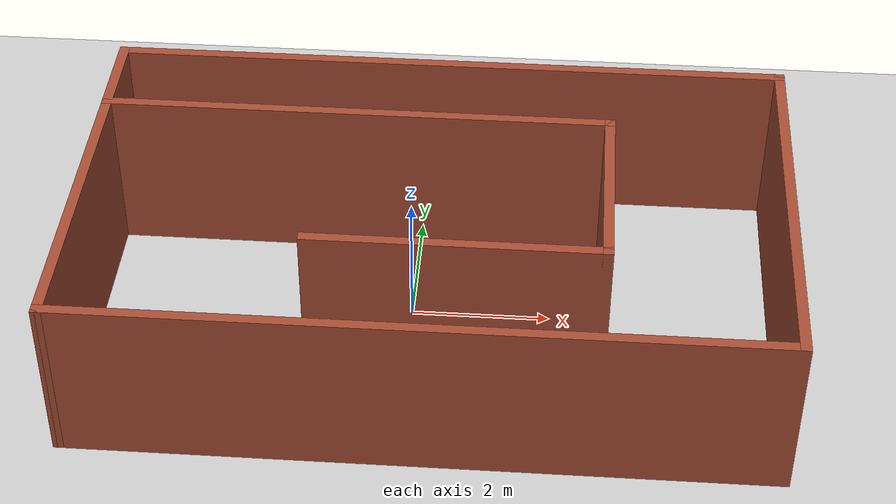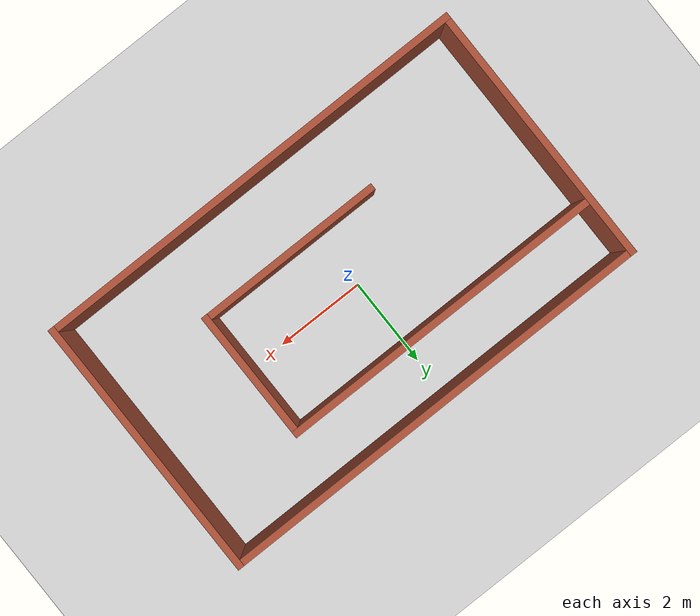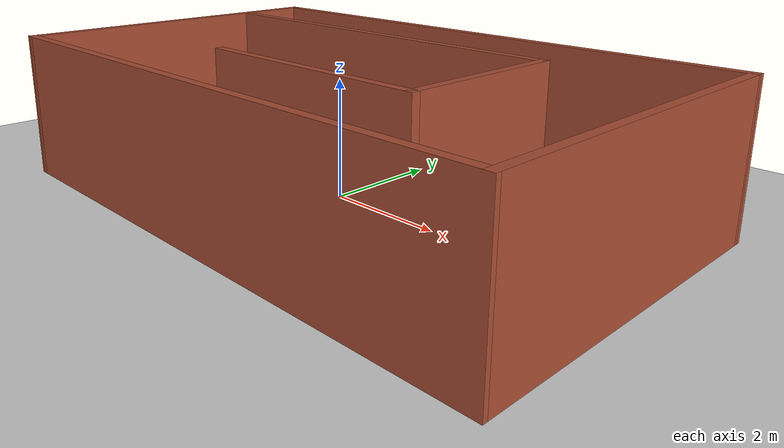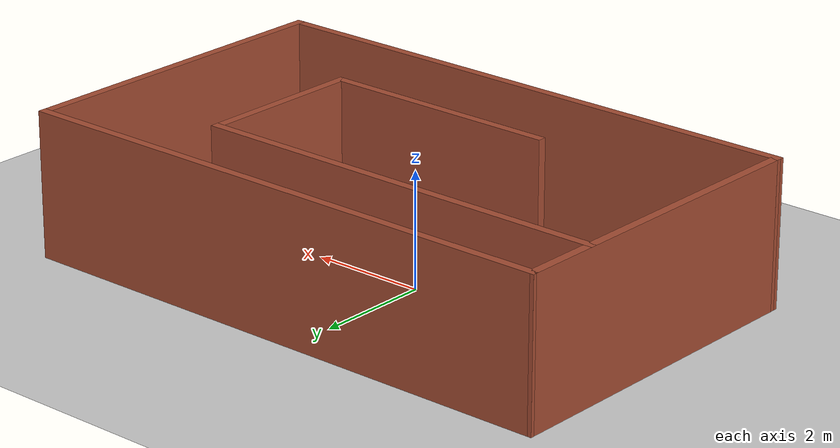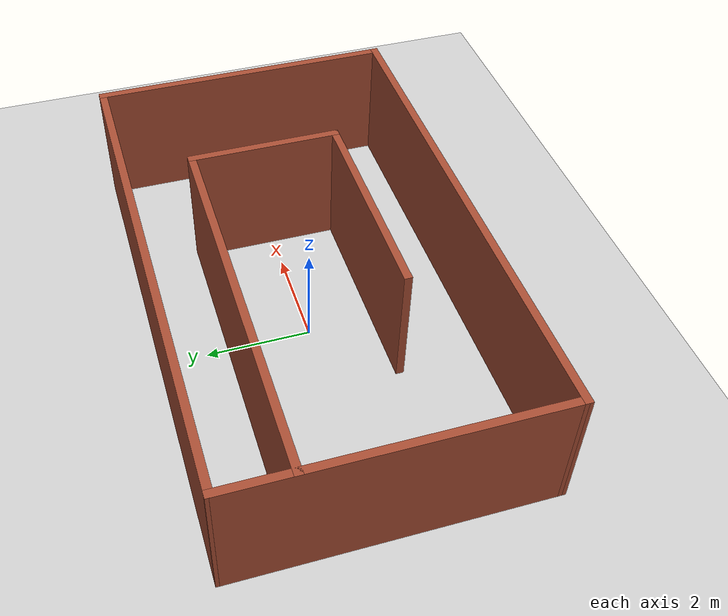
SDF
<sdf version="1.7">
 <world name="default">
  <light name="sun" type="directional">
   <pose>0 0 10 0 -0 0</pose>
   <diffuse>0.8 0.8 0.8 1</diffuse>
   <specular>0.2 0.2 0.2 1</specular>
   <attenuation>
    <range>1000</range>
    <constant>0.9</constant>
    <linear>0.01</linear>
    <quadratic>0.001</quadratic>
   </attenuation>
   <direction>-0.5 0.1 -0.9</direction>
   <spot><inner_angle>0</inner_angle><outer_angle>0</outer_angle><falloff>0</falloff></spot>
  </light>
  <model name="ground_plane">
   <static>1</static>
   <link name="link">
    <collision name="collision">
     <geometry><plane><normal>0 0 1</normal><size>100 100</size></plane></geometry>
     <surface>
      <contact><collide_bitmask>65535</collide_bitmask></contact>
      <friction><ode><mu>100</mu><mu2>50</mu2></ode></friction>
     </surface>
    </collision>
    <visual name="visual">
     <cast_shadows>0</cast_shadows>
     <geometry><plane><normal>0 0 1</normal><size>100 100</size></plane></geometry>
     <material>
      <script><uri>file://media/materials/scripts/gazebo.material</uri><name>Gazebo/Grey</name></script>
     </material>
    </visual>
   </link>
  </model>
  <gravity>0 0 -9.8</gravity>
  <magnetic_field>6e-06 2.3e-05 -4.2e-05</magnetic_field>
  <atmosphere type="adiabatic"/>
  <physics type="ode">
   <max_step_size>0.001</max_step_size>
   <real_time_factor>1</real_time_factor>
   <real_time_update_rate>1000</real_time_update_rate>
  </physics>
  <scene><ambient>0.4 0.4 0.4 1</ambient><background>0.7 0.7 0.7 1</background><shadows>1</shadows></scene>
  <spherical_coordinates>
   <surface_model>EARTH_WGS84</surface_model>
   <latitude_deg>0</latitude_deg>
   <longitude_deg>0</longitude_deg>
   <elevation>0</elevation>
   <heading_deg>0</heading_deg>
  </spherical_coordinates>
  <model name="demo">
   <pose>0.326 -0.093996 0 0 -0 0</pose>
   <link name="Wall_23">
    <collision name="Wall_23_Collision">
     <geometry><box><size>6.00033 0.15 2.5</size></box></geometry>
     <pose>0 0 1.25 0 -0 0</pose>
    </collision>
    <visual name="Wall_23_Visual">
     <pose>0 0 1.25 0 -0 0</pose>
     <geometry><box><size>6.00033 0.15 2.5</size></box></geometry>
     <material>
      <script><uri>file://media/materials/scripts/gazebo.material</uri><name>Gazebo/Bricks</name></script>
      <ambient>1 1 1 1</ambient>
     </material>
     <meta><layer>0</layer></meta>
    </visual>
    <pose>4.925 0.008496 0 0 -0 -1.5708</pose>
   </link>
   <link name="Wall_24">
    <collision name="Wall_24_Collision">
     <geometry><box><size>10 0.15 2.5</size></box></geometry>
     <pose>0 0 1.25 0 -0 0</pose>
    </collision>
    <visual name="Wall_24_Visual">
     <pose>0 0 1.25 0 -0 0</pose>
     <geometry><box><size>10 0.15 2.5</size></box></geometry>
     <material>
      <script><uri>file://media/materials/scripts/gazebo.material</uri><name>Gazebo/Bricks</name></script>
      <ambient>1 1 1 1</ambient>
     </material>
     <meta><layer>0</layer></meta>
    </visual>
    <pose>-0 -2.9255 0 0 -0 -3.13987</pose>
   </link>
   <link name="Wall_25">
    <collision name="Wall_25_Collision">
     <geometry><box><size>6 0.15 2.5</size></box></geometry>
     <pose>0 0 1.25 0 -0 0</pose>
    </collision>
    <visual name="Wall_25_Visual">
     <pose>0 0 1.25 0 -0 0</pose>
     <geometry><box><size>6 0.15 2.5</size></box></geometry>
     <material>
      <script><uri>file://media/materials/scripts/gazebo.material</uri><name>Gazebo/Bricks</name></script>
      <ambient>1 1 1 1</ambient>
     </material>
     <meta><layer>0</layer></meta>
    </visual>
    <pose>-4.925 -0.009004 0 0 -0 1.5708</pose>
   </link>
   <link name="Wall_26">
    <collision name="Wall_26_Collision">
     <geometry><box><size>10 0.15 2.5</size></box></geometry>
     <pose>0 0 1.25 0 -0 0</pose>
    </collision>
    <visual name="Wall_26_Visual">
     <pose>0 0 1.25 0 -0 0</pose>
     <geometry><box><size>10 0.15 2.5</size></box></geometry>
     <material>
      <script><uri>file://media/materials/scripts/gazebo.material</uri><name>Gazebo/Bricks</name></script>
      <ambient>1 1 1 1</ambient>
     </material>
     <meta><layer>0</layer></meta>
    </visual>
    <pose>-0 2.925 0 0 -0 0.001827</pose>
   </link>
   <link name="Wall_29">
    <collision name="Wall_29_Collision">
     <geometry><box><size>7.5 0.15 2.5</size></box></geometry>
     <pose>0 0 1.25 0 -0 0</pose>
    </collision>
    <visual name="Wall_29_Visual">
     <pose>0 0 1.25 0 -0 0</pose>
     <geometry><box><size>7.5 0.15 2.5</size></box></geometry>
     <material>
      <script><uri>file://media/materials/scripts/gazebo.material</uri><name>Gazebo/Bricks</name></script>
      <ambient>1 1 1 1</ambient>
     </material>
     <meta><layer>0</layer></meta>
    </visual>
    <pose>-1.25 1.616 0 0 -0 0</pose>
   </link>
   <link name="Wall_30">
    <collision name="Wall_30_Collision">
     <geometry><box><size>3 0.15 2.5</size></box></geometry>
     <pose>0 0 1.25 0 -0 0</pose>
    </collision>
    <visual name="Wall_30_Visual">
     <pose>0 0 1.25 0 -0 0</pose>
     <geometry><box><size>3 0.15 2.5</size></box></geometry>
     <material>
      <script><uri>file://media/materials/scripts/gazebo.material</uri><name>Gazebo/Bricks</name></script>
      <ambient>1 1 1 1</ambient>
     </material>
     <meta><layer>0</layer></meta>
    </visual>
    <pose>2.425 0.190996 0 0 -0 -1.5708</pose>
   </link>
   <link name="Wall_31">
    <collision name="Wall_31_Collision">
     <geometry><box><size>4.25 0.15 2.5</size></box></geometry>
     <pose>0 0 1.25 0 -0 0</pose>
    </collision>
    <visual name="Wall_31_Visual">
     <pose>0 0 1.25 0 -0 0</pose>
     <geometry><box><size>4.25 0.15 2.5</size></box></geometry>
     <material>
      <script><uri>file://media/materials/scripts/gazebo.material</uri><name>Gazebo/Bricks</name></script>
      <ambient>1 1 1 1</ambient>
     </material>
     <meta><layer>0</layer></meta>
    </visual>
    <pose>0.375 -1.234 0 0 -0 3.14159</pose>
   </link>
   <static>1</static>
  </model>
 </world>
</sdf>
